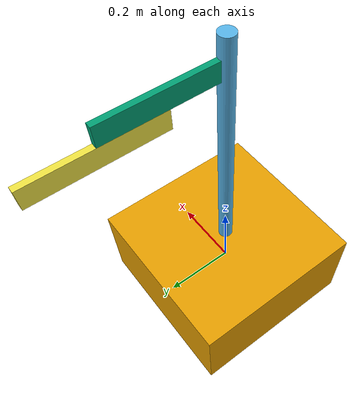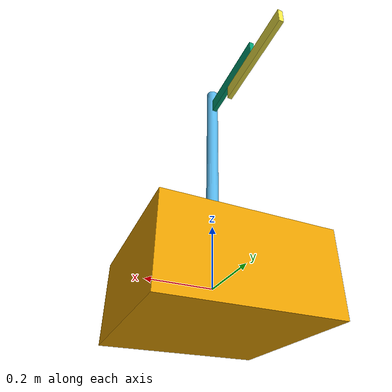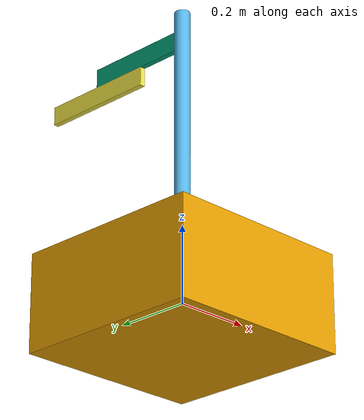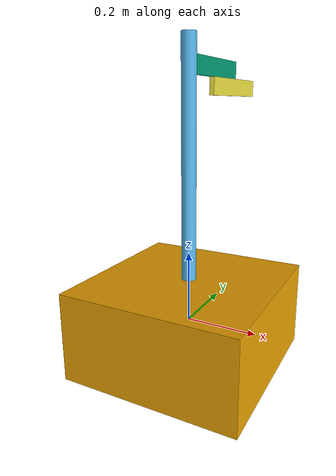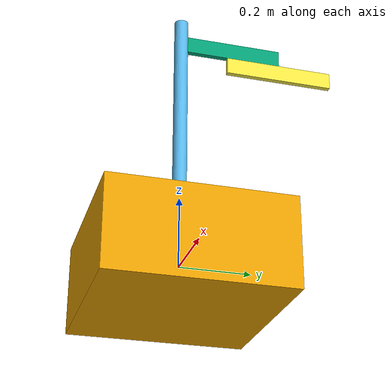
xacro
<?xml version="1.0"?>
<robot xmlns:xacro="http://www.ros.org/wiki/xacro" name="swing_arm2">
  <link name="base_link">
    <visual>
      <geometry>
        <box size="0.5 0.5 0.25" />
      </geometry>
    </visual>
    <collision>
      <geometry>
        <box size="0.5 0.5 0.25" />
      </geometry>
    </collision>
    <inertial>
      <mass value="10000.0" />
      <inertia ixx="100.0" ixy="0" ixz="0" iyy="100.0" iyz="0" izz="100.0" />
    </inertial>
  </link>

  <link name="turret_link">
    <visual>
      <geometry>
        <cylinder radius="0.02" length="0.65" />
      </geometry>
    </visual>
    <collision>
      <geometry>
        <cylinder radius="0.02" length="0.65" />
      </geometry>
    </collision>
    <inertial>
      <mass value="1.0" />
      <inertia ixx="0.01" ixy="0" ixz="0" iyy="0.01" iyz="0" izz="0.01" />
    </inertial>
  </link>

  <link name="boom_link">
    <visual>
      <geometry>
        <box size="0.015 0.3 0.05" />
      </geometry>
    </visual>
    <collision>
      <geometry>
        <box size="0.015 0.3 0.05" />
      </geometry>
    </collision>
    <inertial>
      <mass value="0.5" />
      <inertia ixx="0.01" ixy="0" ixz="0" iyy="0.01" iyz="0" izz="0.01" />
    </inertial>
  </link>

  <link name="diverter_link">
    <visual>
      <geometry>
        <box size="0.015 0.32 0.05" />
      </geometry>
      <origin xyz="0 0 0" rpy="0 0 0" />
    </visual>
    <collision>
      <geometry>
        <box size="0.015 0.32 0.05" />
      </geometry>
      <origin xyz="0 0 0" rpy="0 0 0" />
    </collision>
    <inertial>
      <mass value="5" />
      <inertia ixx="0.1" ixy="0" ixz="0" iyy="0.1" iyz="0" izz="0.1" />
    </inertial>
  </link>

  <joint name='base_link_JOINT_0' type='fixed'>
    <parent link="base_link" />
    <child link="turret_link" />
    <origin xyz="0 0 0.45" rpy="0 0 0" />
  </joint>

  <joint name='turret_link_JOINT_0' type='fixed'>
    <parent link="turret_link" />
    <child link="boom_link" />
    <origin xyz="0 0.15 0.25" rpy="0 0 0" />
  </joint>

  <joint name='boom_link_JOINT_0' type='revolute'>
    <parent link="boom_link" />
    <child link="diverter_link" />
    <origin xyz="0 0.15 -0.05" rpy="0 0 0" />
    <limit lower="-3.14159" upper="3.14159" effort="1000" velocity="10.0" />
    <axis xyz="0 0 1" />
    <dynamics damping="0" friction="0" />
  </joint>

  <ros2_control name="swing_arm_system" type="system">
    <hardware>
      <plugin>gazebo_ros2_control/GazeboSystem</plugin>
    </hardware>
    <joint name="boom_link_JOINT_0">
      <command_interface name="effort">
        <param name="min">-1000</param>
        <param name="max">1000</param>
      </command_interface>
      <state_interface name="position" />
      <state_interface name="velocity" />
      <state_interface name="effort" />
    </joint>
  </ros2_control>

  <gazebo>
    <plugin filename="libgazebo_ros2_control.so" name="gazebo_ros2_control">
      <parameters>$(find conveyorbelt_gazebo)/config/swing_arm_controllers.yaml</parameters>
    </plugin>
  </gazebo>

</robot>
